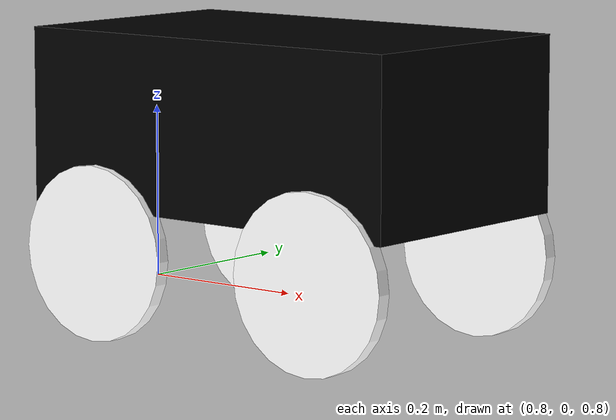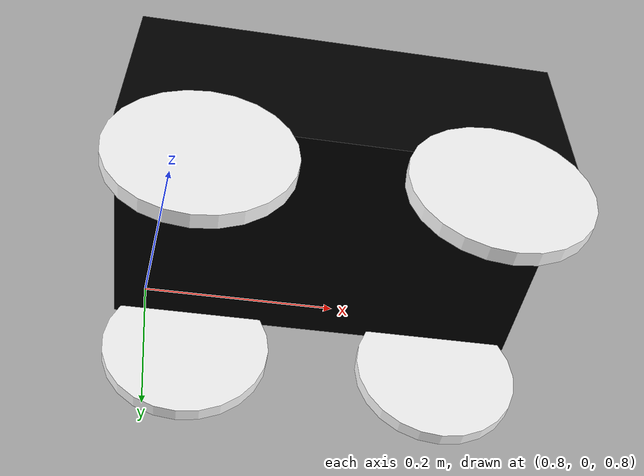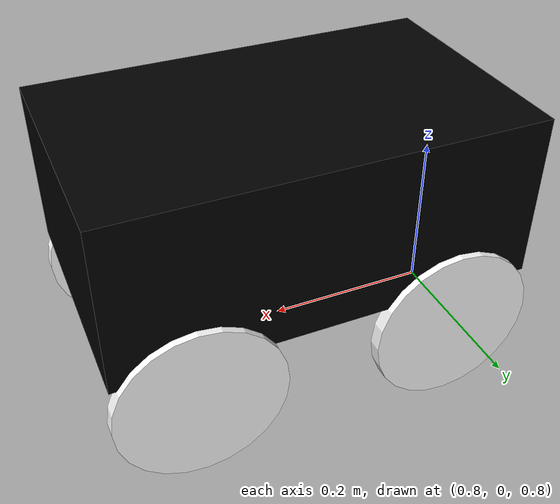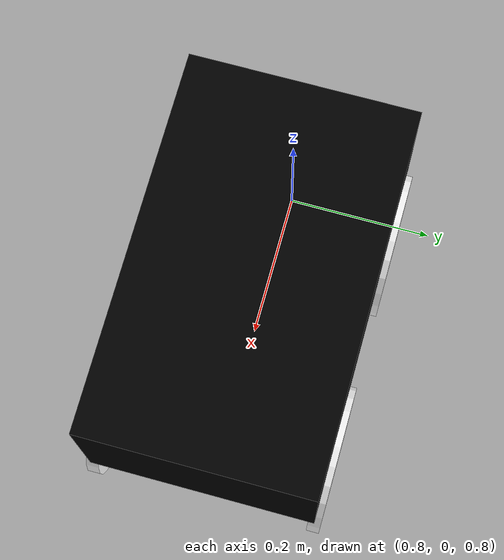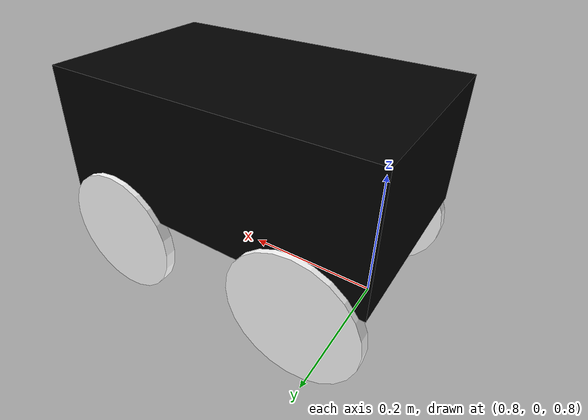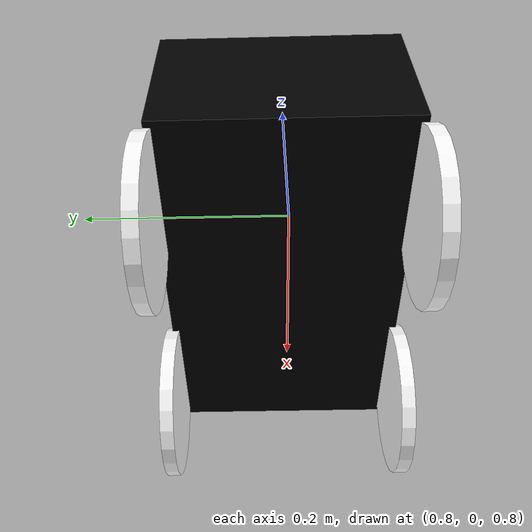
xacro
<?xml version="1.0"?>
<robot xmlns:xacro="http://www.ros.org/wiki/xacro" name="robot">

    <xacro:include filename="inertial_macros.xacro"/>
    <xacro:include filename="colors.xacro"/>

    <!-- Create Base Link -->
    <link name="base_link">
    </link>

    <!-- Chassis-->
    <joint name="chassis_joint" type="fixed">
        <parent link="base_link"/>
        <child link="chassis"/>
        <origin xyz="1 0 1"/>
    </joint>

    <link name="chassis">
        <visual>
            <origin xyz="0 0 0"/>
            <geometry>
                <box size="0.5 0.3 0.2"/>
            </geometry>
            <material name="black"/>
        </visual>
        <collision>
            <origin xyz="0 0 0"/>
            <geometry>
                <box size="0.5 0.3 0.2"/>
            </geometry>
        </collision>
        <xacro:inertial_box mass="22" x="0.5" y="0.3" z="0.2">
            <origin xyz="0 0 0" rpy="0 0 0"/>
        </xacro:inertial_box>

    </link>

    <gazebo reference="chassis">
        <material>Gazebo/Black</material>
    </gazebo>

    <!-- Suspension-->

    <!-- WHEELS -->

    <!-- Left Front -->
    <joint name="left_front_wheel_joint" type="continuous">
        <parent link="chassis"/>
        <child link="left_front_wheel"/>
        <origin xyz="0.155 0.15 -.15" rpy="-${pi/2} 0 0"/>
        <axis xyz="0 0 1" />
    </joint>

    <link name="left_front_wheel">
        <visual>
            <geometry>
                <cylinder radius="0.1" length="0.017"/>
            </geometry>
            <material name="white"/>
        </visual>
        <collision>
            <geometry>
                <cylinder radius="0.1" length="0.017"/>
            </geometry>
        </collision>
        <xacro:inertial_cylinder mass ="0.1" length="0.017" radius="0.1">
            <origin xyz="0 0 0" rpy="0 0 0"/>
        </xacro:inertial_cylinder>

    </link>

    <gazebo reference="left_front_wheel">
        <material>Gazebo/White</material>
    </gazebo>

    <!-- Left Back -->
    <joint name="left_back_wheel_joint" type="continuous">
        <parent link="chassis"/>
        <child link="left_back_wheel"/>
        <origin xyz="-0.155 0.15 -.15" rpy="-${pi/2} 0 0"/>
        <axis xyz="0 0 1" />
    </joint>

    <link name="left_back_wheel">
        <visual>
            <geometry>
                <cylinder radius="0.1" length="0.017"/>
            </geometry>
            <material name="white"/>
        </visual>
        <collision>
            <geometry>
                <cylinder radius="0.1" length="0.017"/>
            </geometry>
        </collision>
        <xacro:inertial_cylinder mass ="0.1" length="0.017" radius="0.1">
            <origin xyz="0 0 0" rpy="0 0 0"/>
        </xacro:inertial_cylinder>
    </link>

    <gazebo reference="left_back_wheel">
        <material>Gazebo/White</material>
    </gazebo>

    <!-- Right Front -->
    <joint name="right_front_wheel_joint" type="continuous">
        <parent link="chassis"/>
        <child link="right_front_wheel"/>
        <origin xyz="0.155 -0.15 -.15" rpy="${pi/2} 0 0"/>
        <axis xyz="0 0 -1" />
    </joint>

    <link name="right_front_wheel">
        <visual>
            <geometry>
                <cylinder radius="0.1" length="0.017"/>
            </geometry>
            <material name="white"/>
            </visual>
        <collision>
            <geometry>
                <cylinder radius="0.1" length="0.017"/>
            </geometry>
        </collision>
        <xacro:inertial_cylinder mass ="0.1" length="0.017" radius="0.1">
            <origin xyz="0 0 0" rpy="0 0 0"/>
        </xacro:inertial_cylinder>
    </link>

    <gazebo reference="right_front_wheel">
        <material>Gazebo/White</material>
    </gazebo>

    <!-- Right Back -->
    <joint name="right_back_wheel_joint" type="continuous">
        <parent link="chassis"/>
        <child link="right_back_wheel"/>
        <origin xyz="-0.155 -0.15 -.15" rpy="${pi/2} 0 0"/>
        <axis xyz="0 0 -1" />
    </joint>

    <link name="right_back_wheel">
        <visual>
            <geometry>
                <cylinder radius="0.1" length="0.017"/>
            </geometry>
            <material name="white"/>
        </visual>
        <collision>
            <geometry>
                <cylinder radius="0.1" length="0.017"/>
            </geometry>
        </collision>
        <xacro:inertial_cylinder mass ="0.1" length="0.017" radius="0.1">
            <origin xyz="0 0 0" rpy="0 0 0"/>
        </xacro:inertial_cylinder>
    </link>

    <gazebo reference="right_back_wheel">
        <material>Gazebo/White</material>
    </gazebo>

</robot>

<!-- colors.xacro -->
<robot xmlns:xacro="http://www.ros.org/wiki/xacro" >

    <!-- Defines colors to be used in other urdf files -->
    <material name="white">
        <color rgba="1 1 1 1"/>
    </material>

    <material name="orange">
        <color rgba="1 0.3 0.1 1"/>
    </material>

    <material name="blue">
        <color rgba="0.2 0.2 1 1"/>
    </material>

    <material name="black">
        <color rgba="0 0 0 1"/>
    </material>

</robot>
